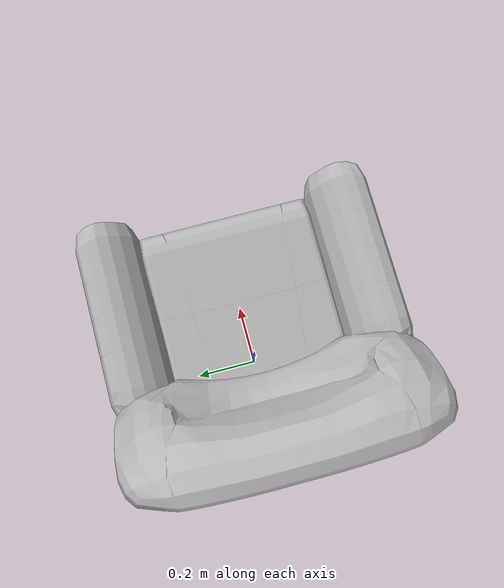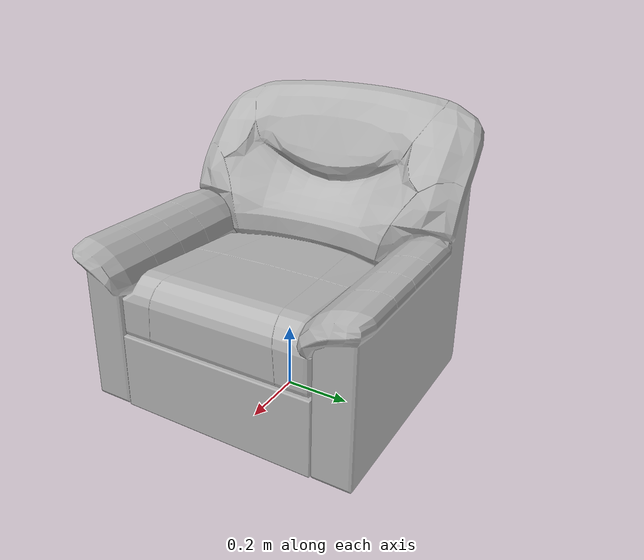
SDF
<?xml version='1.0'?>
<sdf version='1.4'>
  <model name='693'>
    <pose>0 0 0 0 0 0</pose>
    <static>true</static>
    <link name='link'>
      <collision name='collision'>
        <pose>0 0 0 0 0 0</pose>
        <geometry>
          <box>
            <size>0.900053 0.9 2</size>
          </box>
        </geometry>
      </collision>
      <visual name='visual'>
        <pose>0 0 0 0 0 0</pose>
        <geometry>
          <mesh><uri>model://693/693.dae</uri></mesh>
        </geometry>
      </visual>
    </link>
  </model>
</sdf>
